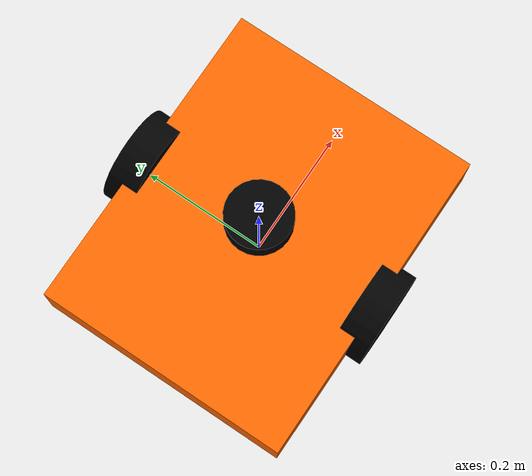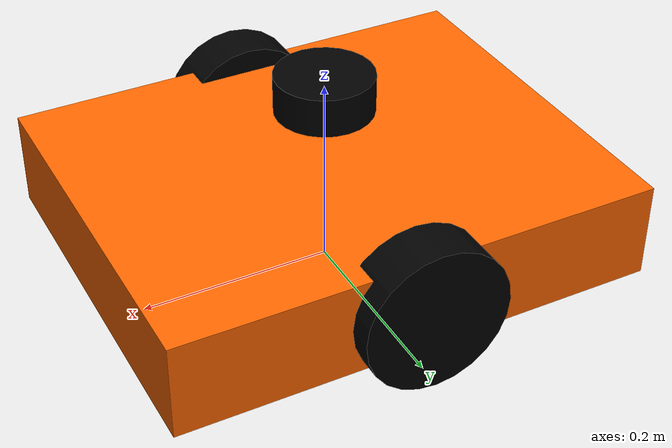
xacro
<?xml version="1.0"?>
<robot xmlns:xacro="http://www.ros.org/wiki/xacro" name="warehouse_robot">

  <!-- PROPERTIES (like variables) - OPTIMIZED FOR STABILITY -->
  <xacro:property name="base_width" value="0.4"/>
  <xacro:property name="base_length" value="0.5"/>
  <xacro:property name="base_height" value="0.10"/>  <!-- Lower center of mass -->
  <xacro:property name="wheel_radius" value="0.075"/>
  <xacro:property name="wheel_width" value="0.05"/>
  <xacro:property name="wheel_separation" value="0.4"/>
  <xacro:property name="wheel_mass" value="2.0"/>
  <xacro:property name="base_mass" value="30.0"/>  <!-- Heavier for stability -->

  <!-- COLORS -->
  <material name="orange">
    <color rgba="1.0 0.4 0.0 1.0"/>
  </material>

  <material name="black">
    <color rgba="0.0 0.0 0.0 1.0"/>
  </material>

  <material name="white">
    <color rgba="1.0 1.0 1.0 1.0"/>
  </material>

  <!-- BASE FOOTPRINT (ground reference) -->
  <link name="base_footprint"/>

  <!-- BASE LINK (main body) -->
  <link name="base_link">
    <visual>
      <origin xyz="0 0 0" rpy="0 0 0"/>
      <geometry>
        <box size="${base_length} ${base_width} ${base_height}"/>
      </geometry>
      <material name="orange"/>
    </visual>

    <collision>
      <origin xyz="0 0 ${base_height/2}" rpy="0 0 0"/>
      <geometry>
        <box size="${base_length} ${base_width} ${base_height}"/>
      </geometry>
    </collision>

    <inertial>
      <origin xyz="-0.015 0 0.025" rpy="0 0 0"/>
      <mass value="${base_mass}"/>
      <inertia
        ixx="${(1/12) * base_mass * (base_width*base_width + base_height*base_height)}"
        ixy="0.0"
        ixz="0.0"
        iyy="${(1/12) * base_mass * (base_length*base_length + base_height*base_height)}"
        iyz="0.0"
        izz="${(1/12) * base_mass * (base_width*base_width + base_length*base_length)}"/>
    </inertial>
  </link>

  <!-- Connect base_footprint to base_link -->
  <joint name="base_joint" type="fixed">
    <parent link="base_footprint"/>
    <child link="base_link"/>
    <origin xyz="0 0 ${wheel_radius}" rpy="0 0 0"/>
  </joint>

  <!-- LEFT WHEEL -->
  <link name="left_wheel">
    <visual>
      <origin xyz="0 0 0" rpy="1.5708 0 0"/>
      <geometry>
        <cylinder radius="${wheel_radius}" length="${wheel_width}"/>
      </geometry>
      <material name="black"/>
    </visual>

    <collision>
      <origin xyz="0 0 0" rpy="1.5708 0 0"/>
      <geometry>
        <cylinder radius="${wheel_radius}" length="${wheel_width}"/>
      </geometry>
      <surface>
        <friction>
          <ode>
            <mu>1.0</mu>
            <mu2>1.0</mu2>
          </ode>
        </friction>
      </surface>
    </collision>

    <inertial>
      <origin xyz="0 0 0" rpy="1.5708 0 0"/>
      <mass value="${wheel_mass}"/>
      <inertia
        ixx="${(1/12) * wheel_mass * (3*wheel_radius*wheel_radius + wheel_width*wheel_width)}"
        ixy="0.0"
        ixz="0.0"
        iyy="${(1/12) * wheel_mass * (3*wheel_radius*wheel_radius + wheel_width*wheel_width)}"
        iyz="0.0"
        izz="${(1/2) * wheel_mass * wheel_radius * wheel_radius}"/>
    </inertial>
  </link>

  <joint name="left_wheel_joint" type="continuous">
    <parent link="base_link"/>
    <child link="left_wheel"/>
    <origin xyz="0 ${wheel_separation/2} 0" rpy="0 0 0"/>
    <axis xyz="0 1 0"/>
    <dynamics damping="0.5" friction="0.5"/>  <!-- Increased damping -->
  </joint>

  <!-- RIGHT WHEEL -->
  <link name="right_wheel">
    <visual>
      <origin xyz="0 0 0" rpy="1.5708 0 0"/>
      <geometry>
        <cylinder radius="${wheel_radius}" length="${wheel_width}"/>
      </geometry>
      <material name="black"/>
    </visual>

    <collision>
      <origin xyz="0 0 0" rpy="1.5708 0 0"/>
      <geometry>
        <cylinder radius="${wheel_radius}" length="${wheel_width}"/>
      </geometry>
      <surface>
        <friction>
          <ode>
            <mu>1.0</mu>
            <mu2>1.0</mu2>
          </ode>
        </friction>
      </surface>
    </collision>

    <inertial>
      <origin xyz="0 0 0" rpy="1.5708 0 0"/>
      <mass value="${wheel_mass}"/>
      <inertia
        ixx="${(1/12) * wheel_mass * (3*wheel_radius*wheel_radius + wheel_width*wheel_width)}"
        ixy="0.0"
        ixz="0.0"
        iyy="${(1/12) * wheel_mass * (3*wheel_radius*wheel_radius + wheel_width*wheel_width)}"
        iyz="0.0"
        izz="${(1/2) * wheel_mass * wheel_radius * wheel_radius}"/>
    </inertial>
  </link>

  <joint name="right_wheel_joint" type="continuous">
    <parent link="base_link"/>
    <child link="right_wheel"/>
    <origin xyz="0 ${-wheel_separation/2} 0" rpy="0 0 0"/>
    <axis xyz="0 1 0"/>
    <dynamics damping="0.5" friction="0.5"/>  <!-- Increased damping -->
  </joint>

  <!-- CASTER WHEEL (for balance) -->
  <link name="caster_wheel">
    <visual>
      <origin xyz="0 0 0" rpy="0 0 0"/>
      <geometry>
        <sphere radius="0.03"/>
      </geometry>
      <material name="white"/>
    </visual>

    <collision>
      <origin xyz="0 0 0" rpy="0 0 0"/>
      <geometry>
        <sphere radius="0.03"/>
      </geometry>
      <surface>
        <friction>
          <ode>
            <mu>0.01</mu>
            <mu2>0.01</mu2>
          </ode>
        </friction>
      </surface>
    </collision>

    <inertial>
      <mass value="0.5"/>
      <inertia ixx="0.0001" ixy="0.0" ixz="0.0" iyy="0.0001" iyz="0.0" izz="0.0001"/>
    </inertial>
  </link>

  <joint name="caster_wheel_joint" type="fixed">
    <parent link="base_link"/>
    <child link="caster_wheel"/>
    <origin xyz="${-base_length/2 + 0.05} 0 ${-wheel_radius + 0.03}" rpy="0 0 0"/>
  </joint>

  <!-- LIDAR SENSOR -->
  <link name="lidar_link">
    <visual>
      <origin xyz="0 0 0" rpy="0 0 0"/>
      <geometry>
        <cylinder radius="0.05" length="0.04"/>
      </geometry>
      <material name="black"/>
    </visual>

    <collision>
      <origin xyz="0 0 0" rpy="0 0 0"/>
      <geometry>
        <cylinder radius="0.05" length="0.04"/>
      </geometry>
    </collision>
+
    <inertial>
      <mass value="0.2"/>
      <inertia ixx="0.0001" ixy="0.0" ixz="0.0" iyy="0.0001" iyz="0.0" izz="0.0001"/>
    </inertial>
  </link>

  <joint name="lidar_joint" type="fixed">
    <parent link="base_link"/>
    <child link="lidar_link"/>
    <origin xyz="0 0 ${base_height + 0.02}" rpy="0 0 0"/>
  </joint>

  <!-- IMU SENSOR for stability -->
  <link name="imu_link">
    <inertial>
      <mass value="0.01"/>
      <inertia ixx="0.00001" ixy="0" ixz="0" iyy="0.00001" iyz="0" izz="0.00001"/>
    </inertial>
  </link>

  <joint name="imu_joint" type="fixed">
    <parent link="base_link"/>
    <child link="imu_link"/>
    <origin xyz="0 0 0.05" rpy="0 0 0"/>
  </joint>

  <!-- GAZEBO PLUGINS -->

  <!-- Differential Drive Controller - TUNED FOR STABILITY -->
  <gazebo>
    <plugin name="differential_drive_controller" filename="libgazebo_ros_diff_drive.so">

      <!-- Update rate in Hz -->
      <update_rate>50</update_rate>

      <!-- Wheel Information -->
      <left_joint>left_wheel_joint</left_joint>
      <right_joint>right_wheel_joint</right_joint>
      <wheel_separation>${wheel_separation}</wheel_separation>
      <wheel_diameter>${2*wheel_radius}</wheel_diameter>

      <!-- Limits - REDUCED FOR STABILITY -->
      <max_wheel_torque>5.0</max_wheel_torque>  <!-- Reduced from 20 -->
      <max_wheel_acceleration>0.5</max_wheel_acceleration>  <!-- Reduced from 1.0 -->

      <!-- Topic names -->
      <command_topic>cmd_vel</command_topic>
      <odometry_topic>odom</odometry_topic>

      <!-- Frames -->
      <odometry_frame>odom</odometry_frame>
      <robot_base_frame>base_footprint</robot_base_frame>

      <!-- Publishing -->
      <publish_odom>true</publish_odom>
      <publish_odom_tf>true</publish_odom_tf>
      <publish_wheel_tf>true</publish_wheel_tf>

      <!-- Odometry source -->
      <odometry_source>world</odometry_source>

    </plugin>
  </gazebo>

  <!-- LiDAR Sensor Plugin -->
  <gazebo reference="lidar_link">
    <sensor name="lidar" type="ray">
      <always_on>true</always_on>
      <update_rate>10</update_rate>
      <visualize>true</visualize>
      <pose>0 0 0 0 0 0</pose>
      <ray>
        <scan>
          <horizontal>
            <samples>360</samples>
            <resolution>1</resolution>
            <min_angle>-3.14159</min_angle>
            <max_angle>3.14159</max_angle>
          </horizontal>
        </scan>
        <range>
          <min>0.2</min>
          <max>10.0</max>
          <resolution>0.01</resolution>
        </range>
        <noise>
          <type>gaussian</type>
          <mean>0.0</mean>
          <stddev>0.01</stddev>
        </noise>
      </ray>
      <plugin name="scan" filename="libgazebo_ros_ray_sensor.so">
        <ros>
          <remapping>~/out:=scan</remapping>
        </ros>
        <output_type>sensor_msgs/LaserScan</output_type>
        <frame_name>lidar_link</frame_name>
      </plugin>
    </sensor>
  </gazebo>

  <!-- IMU Sensor Plugin -->
  <gazebo reference="imu_link">
    <sensor name="imu_sensor" type="imu">
      <always_on>true</always_on>
      <update_rate>50</update_rate>
      <plugin name="imu_plugin" filename="libgazebo_ros_imu_sensor.so">
        <ros>
          <remapping>~/out:=imu</remapping>
        </ros>
        <frame_name>imu_link</frame_name>
      </plugin>
    </sensor>
  </gazebo>

  <!-- Material colors and physics for Gazebo -->
  <gazebo reference="base_link">
    <material>Gazebo/Orange</material>
    <mu1>0.2</mu1>
    <mu2>0.2</mu2>
  </gazebo>

  <gazebo reference="left_wheel">
    <material>Gazebo/Black</material>
    <mu1>1.0</mu1>
    <mu2>1.0</mu2>
    <kp>1000000.0</kp>
    <kd>100.0</kd>
    <minDepth>0.001</minDepth>
  </gazebo>

  <gazebo reference="right_wheel">
    <material>Gazebo/Black</material>
    <mu1>1.0</mu1>
    <mu2>1.0</mu2>
    <kp>1000000.0</kp>
    <kd>100.0</kd>
    <minDepth>0.001</minDepth>
  </gazebo>

  <gazebo reference="caster_wheel">
    <material>Gazebo/White</material>
    <mu1>0.01</mu1>
    <mu2>0.01</mu2>
    <kp>1000000.0</kp>
    <kd>1.0</kd>
    <minDepth>0.001</minDepth>
  </gazebo>

</robot>
